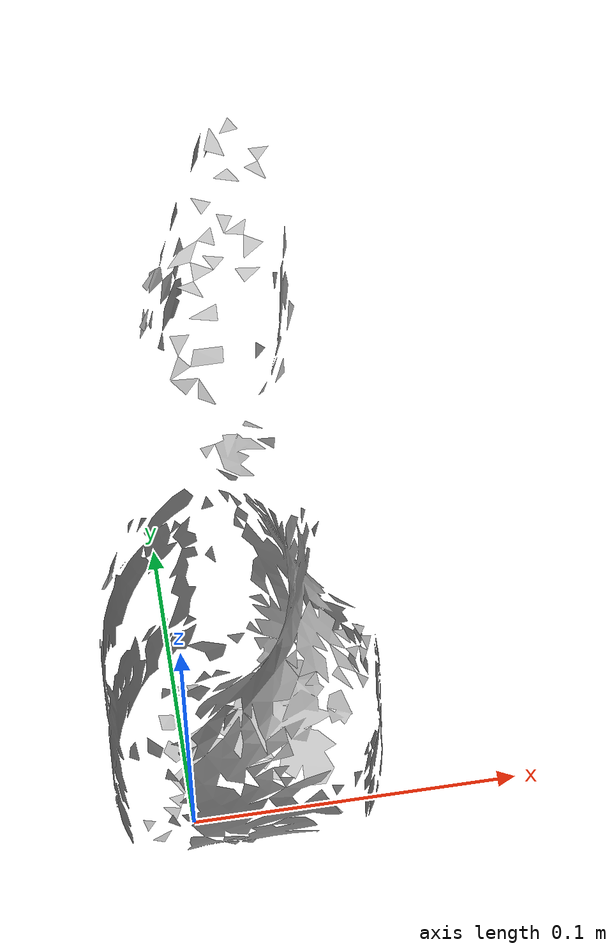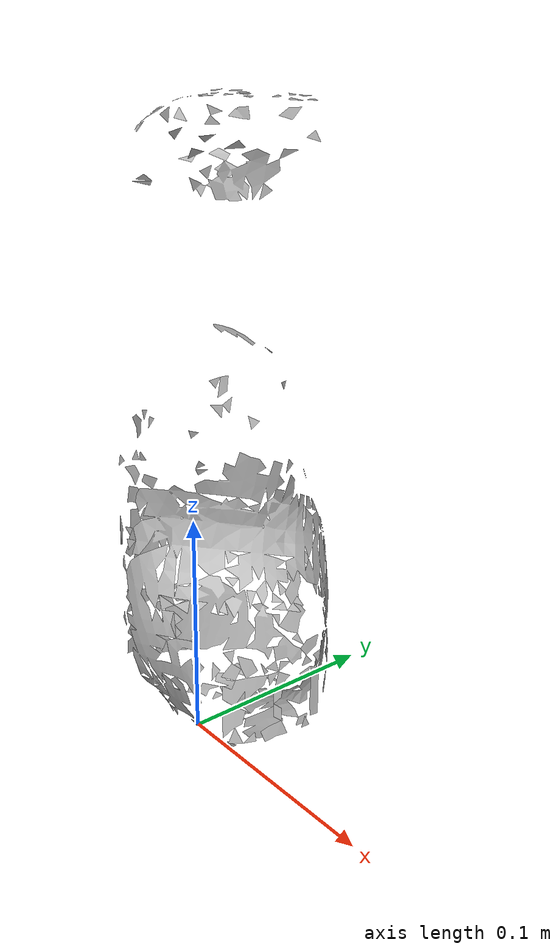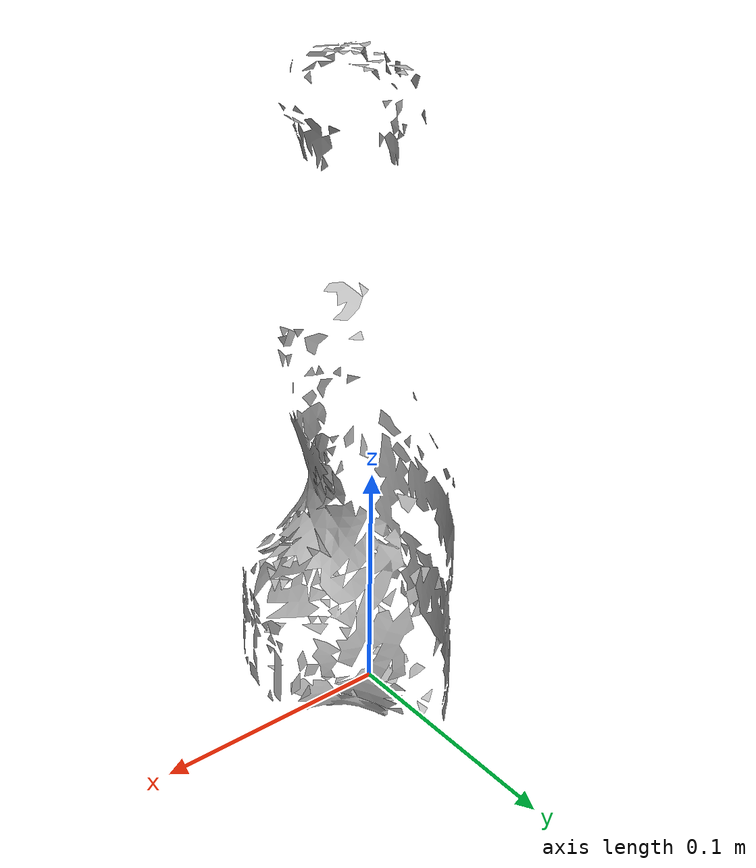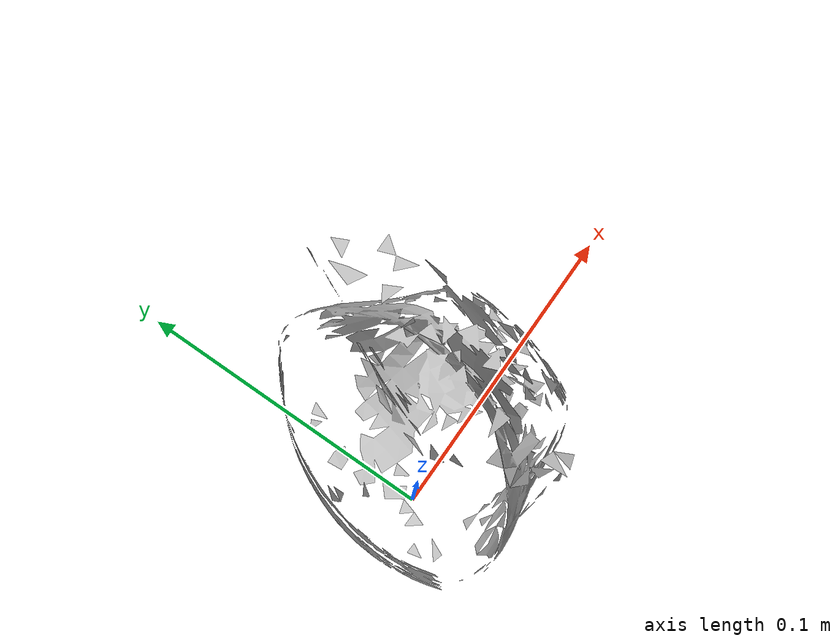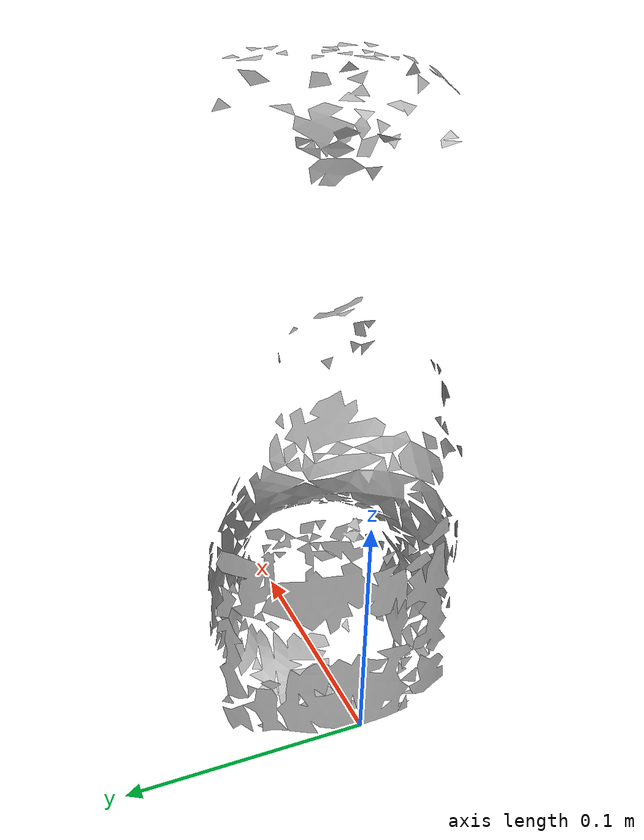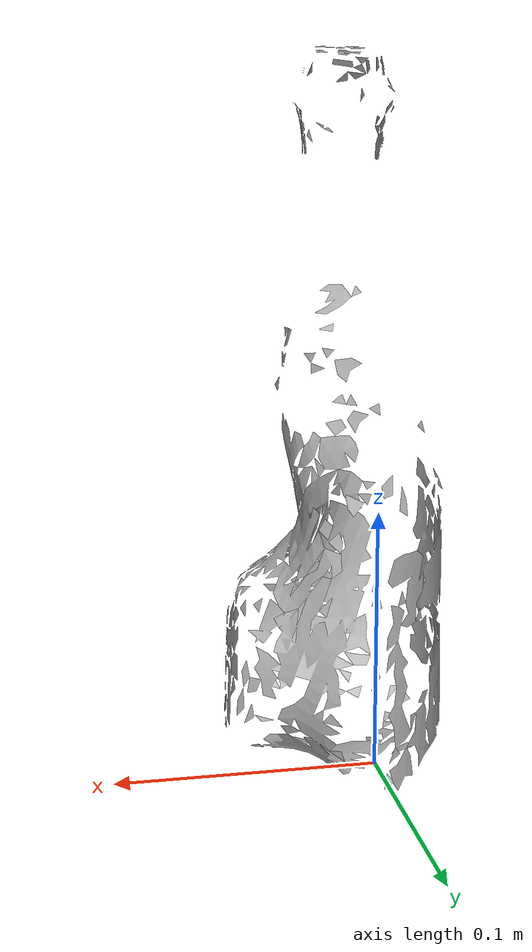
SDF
<?xml version="1.0" ?>
<sdf version="1.4">
  <model name='ycb_022_windex_bottle'>
    <link name='body'>
      <inertial>
        <mass>1.022</mass>
        <pose>0.0139425642907 0.00843004395294 0.102368538691 0 0 0</pose>
        <inertia>
          <ixx>0.00498803796691</ixx>
          <ixy>-4.43347650441e-05</ixy>
          <ixz>1.07219881226e-05</ixz>
          <iyy>0.00485964808771</iyy>
          <iyz>0.000102701885388</iyz>
          <izz>0.000731589299807</izz>
        </inertia>
      </inertial>
      <visual name='ycb_022_windex_bottle_visual'>
        <pose>0 0 0 0 0 0</pose>
        <geometry>
          <mesh>
            <uri>model://ycb_022_windex_bottle/meshes/textured.dae</uri>
          </mesh>
        </geometry>
      </visual>
      <collision name='ycb_022_windex_bottle_collision'>
        <pose>0 0 0 0 0 0</pose>
        <geometry>
          <mesh>
            <uri>model://ycb_022_windex_bottle/meshes/nontextured.stl</uri>
          </mesh>
        </geometry>
        <max_contacts>10</max_contacts>
      </collision>
    </link>
  </model>
</sdf>
